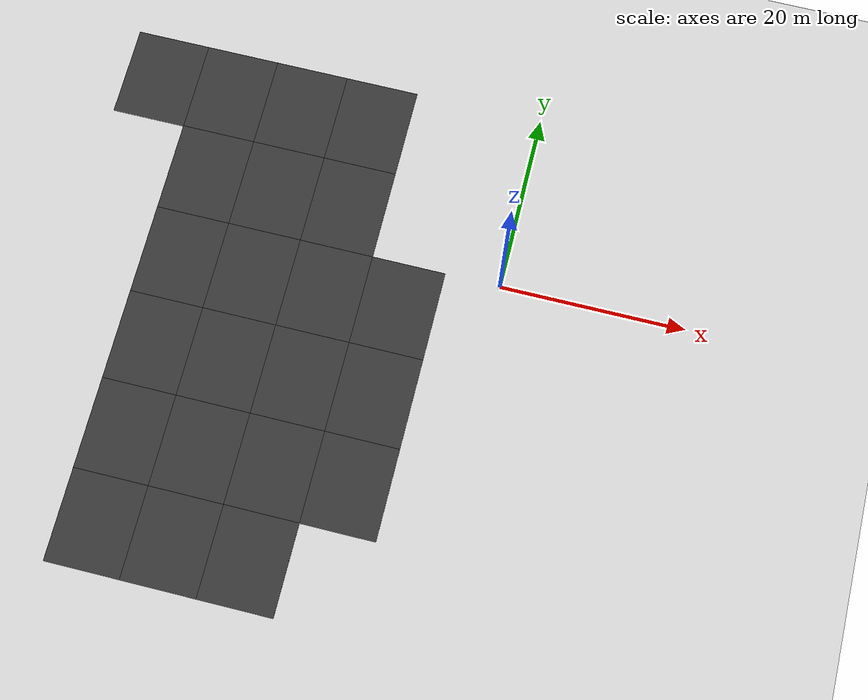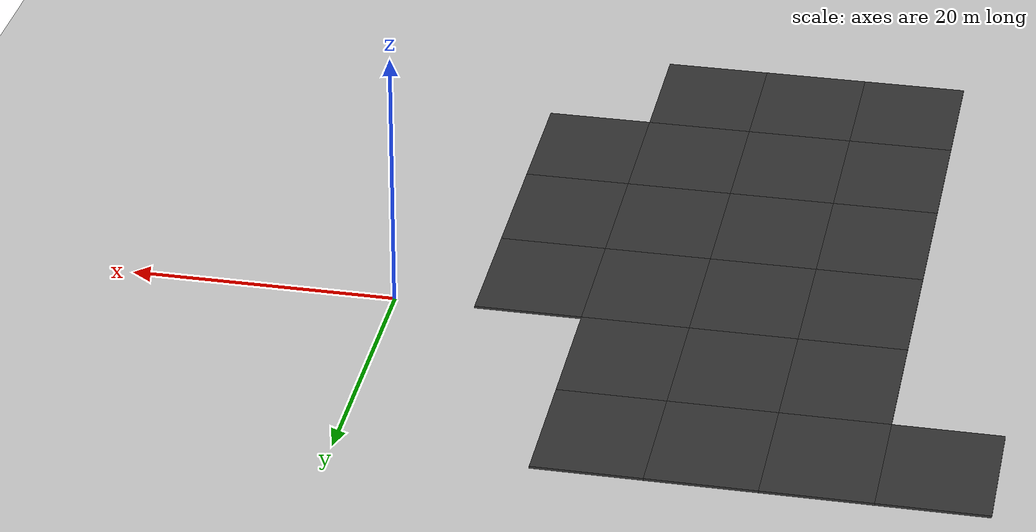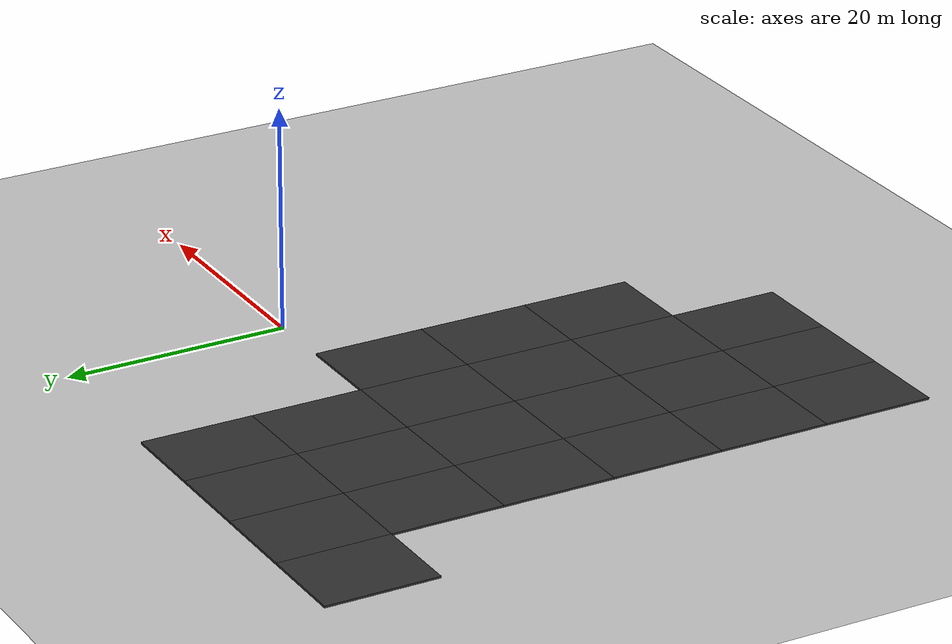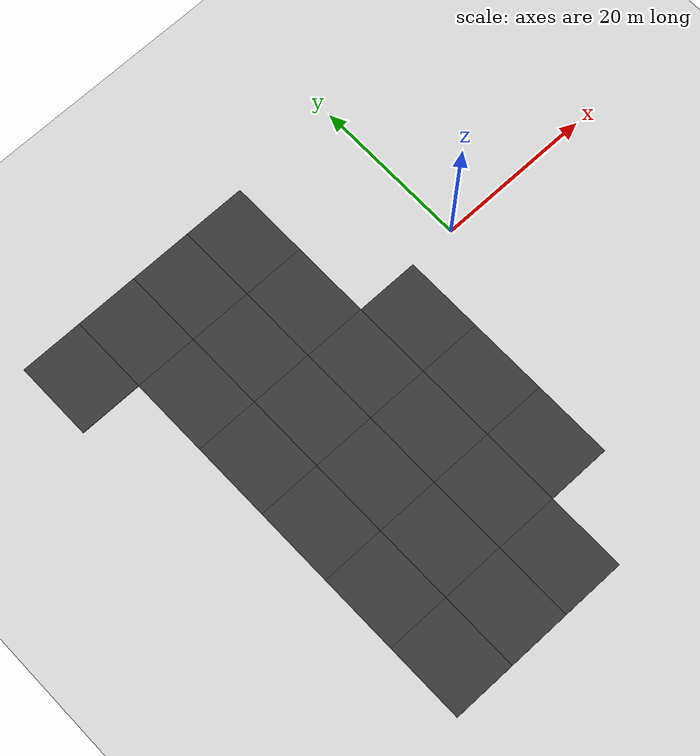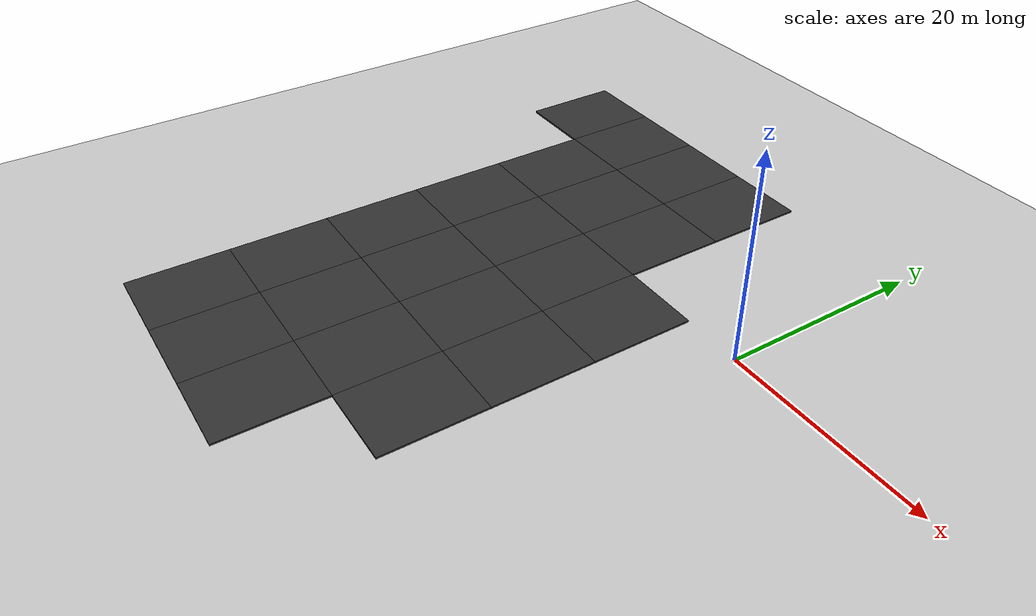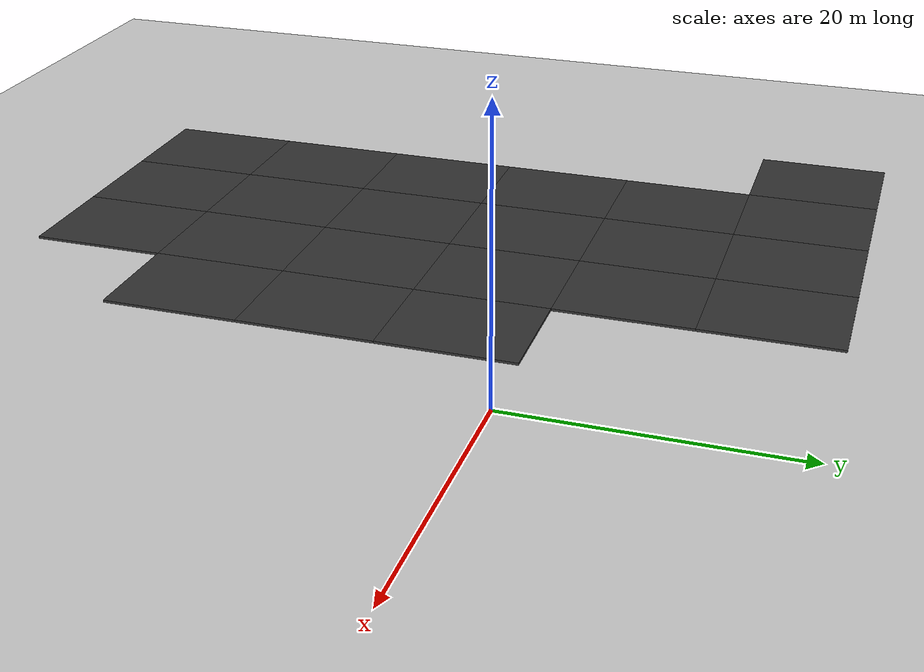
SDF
<sdf version="1.7">
 <world name="default">
  <model name="ground_plane">
   <static>1</static>
   <link name="link">
    <collision name="collision">
     <geometry><plane><normal>0 0 1</normal><size>100 100</size></plane></geometry>
     <surface>
      <contact><collide_bitmask>65535</collide_bitmask></contact>
      <friction><ode><mu>100</mu><mu2>50</mu2></ode></friction>
     </surface>
    </collision>
    <visual name="visual">
     <cast_shadows>0</cast_shadows>
     <geometry><plane><normal>0 0 1</normal><size>100 100</size></plane></geometry>
     <material>
      <script><uri>file://media/materials/scripts/gazebo.material</uri><name>Gazebo/Grey</name></script>
     </material>
    </visual>
   </link>
  </model>
  <model name="mud_box_34">
   <link name="link">
    <inertial>
     <mass>1</mass>
     <inertia><ixx>1</ixx><ixy>0</ixy><ixz>0</ixz><iyy>1</iyy><iyz>0</iyz><izz>1</izz></inertia>
    </inertial>
    <visual name="visual">
     <cast_shadows>0</cast_shadows>
     <geometry><box><size>8 10 0.2</size></box></geometry>
     <material>
      <script>
       <uri>model://mud_box/materials/scripts</uri>
       <uri>model://mud_box/materials/textures</uri>
       <name>vrc/mud</name>
      </script>
      <shader type="pixel"><normal_map>__default__</normal_map></shader>
      <ambient>0.2 0.2 0.2 1</ambient>
      <diffuse>0.2 0.2 0.2 1</diffuse>
      <specular>0.2 0.2 0.2 1</specular>
      <emissive>0 0 0 1</emissive>
     </material>
    </visual>
    <collision name="collision">
     <geometry><box><size>8 10 0.2</size></box></geometry>
     <surface>
      <friction>
       <ode><mu>1</mu><mu2>1</mu2><fdir1>0 0 0</fdir1><slip1>0</slip1><slip2>0</slip2></ode>
       <torsional>
        <coefficient>1</coefficient>
        <patch_radius>0</patch_radius>
        <surface_radius>0</surface_radius>
        <use_patch_radius>1</use_patch_radius>
        <ode><slip>0</slip></ode>
       </torsional>
      </friction>
      <bounce><restitution_coefficient>0</restitution_coefficient><threshold>1e+06</threshold></bounce>
      <contact>
       <collide_without_contact>0</collide_without_contact>
       <collide_without_contact_bitmask>1</collide_without_contact_bitmask>
       <collide_bitmask>1</collide_bitmask>
       <ode>
        <soft_cfm>0</soft_cfm>
        <soft_erp>0.2</soft_erp>
        <kp>1e+13</kp>
        <kd>1</kd>
        <max_vel>0.01</max_vel>
        <min_depth>0</min_depth>
       </ode>
       <bullet>
        <split_impulse>1</split_impulse>
        <split_impulse_penetration_threshold>-0.01</split_impulse_penetration_threshold>
        <soft_cfm>0</soft_cfm>
        <soft_erp>0.2</soft_erp>
        <kp>1e+13</kp>
        <kd>1</kd>
       </bullet>
      </contact>
     </surface>
    </collision>
   </link>
   <static>1</static>
   <pose>-10 -5 0 0 -0 0</pose>
  </model>
  <model name="mud_box_35">
   <link name="link">
    <inertial>
     <mass>1</mass>
     <inertia><ixx>1</ixx><ixy>0</ixy><ixz>0</ixz><iyy>1</iyy><iyz>0</iyz><izz>1</izz></inertia>
    </inertial>
    <visual name="visual">
     <cast_shadows>0</cast_shadows>
     <geometry><box><size>8 10 0.2</size></box></geometry>
     <material>
      <script>
       <uri>model://mud_box/materials/scripts</uri>
       <uri>model://mud_box/materials/textures</uri>
       <name>vrc/mud</name>
      </script>
      <shader type="pixel"><normal_map>__default__</normal_map></shader>
      <ambient>0.2 0.2 0.2 1</ambient>
      <diffuse>0.2 0.2 0.2 1</diffuse>
      <specular>0.2 0.2 0.2 1</specular>
      <emissive>0 0 0 1</emissive>
     </material>
    </visual>
    <collision name="collision">
     <geometry><box><size>8 10 0.2</size></box></geometry>
     <surface>
      <friction>
       <ode><mu>1</mu><mu2>1</mu2><fdir1>0 0 0</fdir1><slip1>0</slip1><slip2>0</slip2></ode>
       <torsional>
        <coefficient>1</coefficient>
        <patch_radius>0</patch_radius>
        <surface_radius>0</surface_radius>
        <use_patch_radius>1</use_patch_radius>
        <ode><slip>0</slip></ode>
       </torsional>
      </friction>
      <bounce><restitution_coefficient>0</restitution_coefficient><threshold>1e+06</threshold></bounce>
      <contact>
       <collide_without_contact>0</collide_without_contact>
       <collide_without_contact_bitmask>1</collide_without_contact_bitmask>
       <collide_bitmask>1</collide_bitmask>
       <ode>
        <soft_cfm>0</soft_cfm>
        <soft_erp>0.2</soft_erp>
        <kp>1e+13</kp>
        <kd>1</kd>
        <max_vel>0.01</max_vel>
        <min_depth>0</min_depth>
       </ode>
       <bullet>
        <split_impulse>1</split_impulse>
        <split_impulse_penetration_threshold>-0.01</split_impulse_penetration_threshold>
        <soft_cfm>0</soft_cfm>
        <soft_erp>0.2</soft_erp>
        <kp>1e+13</kp>
        <kd>1</kd>
       </bullet>
      </contact>
     </surface>
    </collision>
   </link>
   <static>1</static>
   <pose>-10 -15 0 0 -0 0</pose>
  </model>
  <model name="mud_box_36">
   <link name="link">
    <inertial>
     <mass>1</mass>
     <inertia><ixx>1</ixx><ixy>0</ixy><ixz>0</ixz><iyy>1</iyy><iyz>0</iyz><izz>1</izz></inertia>
    </inertial>
    <visual name="visual">
     <cast_shadows>0</cast_shadows>
     <geometry><box><size>8 10 0.2</size></box></geometry>
     <material>
      <script>
       <uri>model://mud_box/materials/scripts</uri>
       <uri>model://mud_box/materials/textures</uri>
       <name>vrc/mud</name>
      </script>
      <shader type="pixel"><normal_map>__default__</normal_map></shader>
      <ambient>0.2 0.2 0.2 1</ambient>
      <diffuse>0.2 0.2 0.2 1</diffuse>
      <specular>0.2 0.2 0.2 1</specular>
      <emissive>0 0 0 1</emissive>
     </material>
    </visual>
    <collision name="collision">
     <geometry><box><size>8 10 0.2</size></box></geometry>
     <surface>
      <friction>
       <ode><mu>1</mu><mu2>1</mu2><fdir1>0 0 0</fdir1><slip1>0</slip1><slip2>0</slip2></ode>
       <torsional>
        <coefficient>1</coefficient>
        <patch_radius>0</patch_radius>
        <surface_radius>0</surface_radius>
        <use_patch_radius>1</use_patch_radius>
        <ode><slip>0</slip></ode>
       </torsional>
      </friction>
      <bounce><restitution_coefficient>0</restitution_coefficient><threshold>1e+06</threshold></bounce>
      <contact>
       <collide_without_contact>0</collide_without_contact>
       <collide_without_contact_bitmask>1</collide_without_contact_bitmask>
       <collide_bitmask>1</collide_bitmask>
       <ode>
        <soft_cfm>0</soft_cfm>
        <soft_erp>0.2</soft_erp>
        <kp>1e+13</kp>
        <kd>1</kd>
        <max_vel>0.01</max_vel>
        <min_depth>0</min_depth>
       </ode>
       <bullet>
        <split_impulse>1</split_impulse>
        <split_impulse_penetration_threshold>-0.01</split_impulse_penetration_threshold>
        <soft_cfm>0</soft_cfm>
        <soft_erp>0.2</soft_erp>
        <kp>1e+13</kp>
        <kd>1</kd>
       </bullet>
      </contact>
     </surface>
    </collision>
   </link>
   <static>1</static>
   <pose>-10 -25 0 0 -0 0</pose>
  </model>
  <model name="mud_box_40">
   <link name="link">
    <inertial>
     <mass>1</mass>
     <inertia><ixx>1</ixx><ixy>0</ixy><ixz>0</ixz><iyy>1</iyy><iyz>0</iyz><izz>1</izz></inertia>
    </inertial>
    <visual name="visual">
     <cast_shadows>0</cast_shadows>
     <geometry><box><size>8 10 0.2</size></box></geometry>
     <material>
      <script>
       <uri>model://mud_box/materials/scripts</uri>
       <uri>model://mud_box/materials/textures</uri>
       <name>vrc/mud</name>
      </script>
      <shader type="pixel"><normal_map>__default__</normal_map></shader>
      <ambient>0.2 0.2 0.2 1</ambient>
      <diffuse>0.2 0.2 0.2 1</diffuse>
      <specular>0.2 0.2 0.2 1</specular>
      <emissive>0 0 0 1</emissive>
     </material>
    </visual>
    <collision name="collision">
     <geometry><box><size>8 10 0.2</size></box></geometry>
     <surface>
      <friction>
       <ode><mu>1</mu><mu2>1</mu2><fdir1>0 0 0</fdir1><slip1>0</slip1><slip2>0</slip2></ode>
       <torsional>
        <coefficient>1</coefficient>
        <patch_radius>0</patch_radius>
        <surface_radius>0</surface_radius>
        <use_patch_radius>1</use_patch_radius>
        <ode><slip>0</slip></ode>
       </torsional>
      </friction>
      <bounce><restitution_coefficient>0</restitution_coefficient><threshold>1e+06</threshold></bounce>
      <contact>
       <collide_without_contact>0</collide_without_contact>
       <collide_without_contact_bitmask>1</collide_without_contact_bitmask>
       <collide_bitmask>1</collide_bitmask>
       <ode>
        <soft_cfm>0</soft_cfm>
        <soft_erp>0.2</soft_erp>
        <kp>1e+13</kp>
        <kd>1</kd>
        <max_vel>0.01</max_vel>
        <min_depth>0</min_depth>
       </ode>
       <bullet>
        <split_impulse>1</split_impulse>
        <split_impulse_penetration_threshold>-0.01</split_impulse_penetration_threshold>
        <soft_cfm>0</soft_cfm>
        <soft_erp>0.2</soft_erp>
        <kp>1e+13</kp>
        <kd>1</kd>
       </bullet>
      </contact>
     </surface>
    </collision>
   </link>
   <static>1</static>
   <pose>-18 -35 0 0 -0 0</pose>
  </model>
  <model name="mud_box_41">
   <link name="link">
    <inertial>
     <mass>1</mass>
     <inertia><ixx>1</ixx><ixy>0</ixy><ixz>0</ixz><iyy>1</iyy><iyz>0</iyz><izz>1</izz></inertia>
    </inertial>
    <visual name="visual">
     <cast_shadows>0</cast_shadows>
     <geometry><box><size>8 10 0.2</size></box></geometry>
     <material>
      <script>
       <uri>model://mud_box/materials/scripts</uri>
       <uri>model://mud_box/materials/textures</uri>
       <name>vrc/mud</name>
      </script>
      <shader type="pixel"><normal_map>__default__</normal_map></shader>
      <ambient>0.2 0.2 0.2 1</ambient>
      <diffuse>0.2 0.2 0.2 1</diffuse>
      <specular>0.2 0.2 0.2 1</specular>
      <emissive>0 0 0 1</emissive>
     </material>
    </visual>
    <collision name="collision">
     <geometry><box><size>8 10 0.2</size></box></geometry>
     <surface>
      <friction>
       <ode><mu>1</mu><mu2>1</mu2><fdir1>0 0 0</fdir1><slip1>0</slip1><slip2>0</slip2></ode>
       <torsional>
        <coefficient>1</coefficient>
        <patch_radius>0</patch_radius>
        <surface_radius>0</surface_radius>
        <use_patch_radius>1</use_patch_radius>
        <ode><slip>0</slip></ode>
       </torsional>
      </friction>
      <bounce><restitution_coefficient>0</restitution_coefficient><threshold>1e+06</threshold></bounce>
      <contact>
       <collide_without_contact>0</collide_without_contact>
       <collide_without_contact_bitmask>1</collide_without_contact_bitmask>
       <collide_bitmask>1</collide_bitmask>
       <ode>
        <soft_cfm>0</soft_cfm>
        <soft_erp>0.2</soft_erp>
        <kp>1e+13</kp>
        <kd>1</kd>
        <max_vel>0.01</max_vel>
        <min_depth>0</min_depth>
       </ode>
       <bullet>
        <split_impulse>1</split_impulse>
        <split_impulse_penetration_threshold>-0.01</split_impulse_penetration_threshold>
        <soft_cfm>0</soft_cfm>
        <soft_erp>0.2</soft_erp>
        <kp>1e+13</kp>
        <kd>1</kd>
       </bullet>
      </contact>
     </surface>
    </collision>
   </link>
   <static>1</static>
   <pose>-18 -25 0 0 -0 0</pose>
  </model>
  <model name="mud_box_42">
   <link name="link">
    <inertial>
     <mass>1</mass>
     <inertia><ixx>1</ixx><ixy>0</ixy><ixz>0</ixz><iyy>1</iyy><iyz>0</iyz><izz>1</izz></inertia>
    </inertial>
    <visual name="visual">
     <cast_shadows>0</cast_shadows>
     <geometry><box><size>8 10 0.2</size></box></geometry>
     <material>
      <script>
       <uri>model://mud_box/materials/scripts</uri>
       <uri>model://mud_box/materials/textures</uri>
       <name>vrc/mud</name>
      </script>
      <shader type="pixel"><normal_map>__default__</normal_map></shader>
      <ambient>0.2 0.2 0.2 1</ambient>
      <diffuse>0.2 0.2 0.2 1</diffuse>
      <specular>0.2 0.2 0.2 1</specular>
      <emissive>0 0 0 1</emissive>
     </material>
    </visual>
    <collision name="collision">
     <geometry><box><size>8 10 0.2</size></box></geometry>
     <surface>
      <friction>
       <ode><mu>1</mu><mu2>1</mu2><fdir1>0 0 0</fdir1><slip1>0</slip1><slip2>0</slip2></ode>
       <torsional>
        <coefficient>1</coefficient>
        <patch_radius>0</patch_radius>
        <surface_radius>0</surface_radius>
        <use_patch_radius>1</use_patch_radius>
        <ode><slip>0</slip></ode>
       </torsional>
      </friction>
      <bounce><restitution_coefficient>0</restitution_coefficient><threshold>1e+06</threshold></bounce>
      <contact>
       <collide_without_contact>0</collide_without_contact>
       <collide_without_contact_bitmask>1</collide_without_contact_bitmask>
       <collide_bitmask>1</collide_bitmask>
       <ode>
        <soft_cfm>0</soft_cfm>
        <soft_erp>0.2</soft_erp>
        <kp>1e+13</kp>
        <kd>1</kd>
        <max_vel>0.01</max_vel>
        <min_depth>0</min_depth>
       </ode>
       <bullet>
        <split_impulse>1</split_impulse>
        <split_impulse_penetration_threshold>-0.01</split_impulse_penetration_threshold>
        <soft_cfm>0</soft_cfm>
        <soft_erp>0.2</soft_erp>
        <kp>1e+13</kp>
        <kd>1</kd>
       </bullet>
      </contact>
     </surface>
    </collision>
   </link>
   <static>1</static>
   <pose>-18 -15 0 0 -0 0</pose>
  </model>
  <model name="mud_box_43">
   <link name="link">
    <inertial>
     <mass>1</mass>
     <inertia><ixx>1</ixx><ixy>0</ixy><ixz>0</ixz><iyy>1</iyy><iyz>0</iyz><izz>1</izz></inertia>
    </inertial>
    <visual name="visual">
     <cast_shadows>0</cast_shadows>
     <geometry><box><size>8 10 0.2</size></box></geometry>
     <material>
      <script>
       <uri>model://mud_box/materials/scripts</uri>
       <uri>model://mud_box/materials/textures</uri>
       <name>vrc/mud</name>
      </script>
      <shader type="pixel"><normal_map>__default__</normal_map></shader>
      <ambient>0.2 0.2 0.2 1</ambient>
      <diffuse>0.2 0.2 0.2 1</diffuse>
      <specular>0.2 0.2 0.2 1</specular>
      <emissive>0 0 0 1</emissive>
     </material>
    </visual>
    <collision name="collision">
     <geometry><box><size>8 10 0.2</size></box></geometry>
     <surface>
      <friction>
       <ode><mu>1</mu><mu2>1</mu2><fdir1>0 0 0</fdir1><slip1>0</slip1><slip2>0</slip2></ode>
       <torsional>
        <coefficient>1</coefficient>
        <patch_radius>0</patch_radius>
        <surface_radius>0</surface_radius>
        <use_patch_radius>1</use_patch_radius>
        <ode><slip>0</slip></ode>
       </torsional>
      </friction>
      <bounce><restitution_coefficient>0</restitution_coefficient><threshold>1e+06</threshold></bounce>
      <contact>
       <collide_without_contact>0</collide_without_contact>
       <collide_without_contact_bitmask>1</collide_without_contact_bitmask>
       <collide_bitmask>1</collide_bitmask>
       <ode>
        <soft_cfm>0</soft_cfm>
        <soft_erp>0.2</soft_erp>
        <kp>1e+13</kp>
        <kd>1</kd>
        <max_vel>0.01</max_vel>
        <min_depth>0</min_depth>
       </ode>
       <bullet>
        <split_impulse>1</split_impulse>
        <split_impulse_penetration_threshold>-0.01</split_impulse_penetration_threshold>
        <soft_cfm>0</soft_cfm>
        <soft_erp>0.2</soft_erp>
        <kp>1e+13</kp>
        <kd>1</kd>
       </bullet>
      </contact>
     </surface>
    </collision>
   </link>
   <static>1</static>
   <pose>-18 -5 0 0 -0 0</pose>
  </model>
  <model name="mud_box_44">
   <link name="link">
    <inertial>
     <mass>1</mass>
     <inertia><ixx>1</ixx><ixy>0</ixy><ixz>0</ixz><iyy>1</iyy><iyz>0</iyz><izz>1</izz></inertia>
    </inertial>
    <visual name="visual">
     <cast_shadows>0</cast_shadows>
     <geometry><box><size>8 10 0.2</size></box></geometry>
     <material>
      <script>
       <uri>model://mud_box/materials/scripts</uri>
       <uri>model://mud_box/materials/textures</uri>
       <name>vrc/mud</name>
      </script>
      <shader type="pixel"><normal_map>__default__</normal_map></shader>
      <ambient>0.2 0.2 0.2 1</ambient>
      <diffuse>0.2 0.2 0.2 1</diffuse>
      <specular>0.2 0.2 0.2 1</specular>
      <emissive>0 0 0 1</emissive>
     </material>
    </visual>
    <collision name="collision">
     <geometry><box><size>8 10 0.2</size></box></geometry>
     <surface>
      <friction>
       <ode><mu>1</mu><mu2>1</mu2><fdir1>0 0 0</fdir1><slip1>0</slip1><slip2>0</slip2></ode>
       <torsional>
        <coefficient>1</coefficient>
        <patch_radius>0</patch_radius>
        <surface_radius>0</surface_radius>
        <use_patch_radius>1</use_patch_radius>
        <ode><slip>0</slip></ode>
       </torsional>
      </friction>
      <bounce><restitution_coefficient>0</restitution_coefficient><threshold>1e+06</threshold></bounce>
      <contact>
       <collide_without_contact>0</collide_without_contact>
       <collide_without_contact_bitmask>1</collide_without_contact_bitmask>
       <collide_bitmask>1</collide_bitmask>
       <ode>
        <soft_cfm>0</soft_cfm>
        <soft_erp>0.2</soft_erp>
        <kp>1e+13</kp>
        <kd>1</kd>
        <max_vel>0.01</max_vel>
        <min_depth>0</min_depth>
       </ode>
       <bullet>
        <split_impulse>1</split_impulse>
        <split_impulse_penetration_threshold>-0.01</split_impulse_penetration_threshold>
        <soft_cfm>0</soft_cfm>
        <soft_erp>0.2</soft_erp>
        <kp>1e+13</kp>
        <kd>1</kd>
       </bullet>
      </contact>
     </surface>
    </collision>
   </link>
   <static>1</static>
   <pose>-26 -5 0 0 -0 0</pose>
  </model>
  <model name="mud_box_45">
   <link name="link">
    <inertial>
     <mass>1</mass>
     <inertia><ixx>1</ixx><ixy>0</ixy><ixz>0</ixz><iyy>1</iyy><iyz>0</iyz><izz>1</izz></inertia>
    </inertial>
    <visual name="visual">
     <cast_shadows>0</cast_shadows>
     <geometry><box><size>8 10 0.2</size></box></geometry>
     <material>
      <script>
       <uri>model://mud_box/materials/scripts</uri>
       <uri>model://mud_box/materials/textures</uri>
       <name>vrc/mud</name>
      </script>
      <shader type="pixel"><normal_map>__default__</normal_map></shader>
      <ambient>0.2 0.2 0.2 1</ambient>
      <diffuse>0.2 0.2 0.2 1</diffuse>
      <specular>0.2 0.2 0.2 1</specular>
      <emissive>0 0 0 1</emissive>
     </material>
    </visual>
    <collision name="collision">
     <geometry><box><size>8 10 0.2</size></box></geometry>
     <surface>
      <friction>
       <ode><mu>1</mu><mu2>1</mu2><fdir1>0 0 0</fdir1><slip1>0</slip1><slip2>0</slip2></ode>
       <torsional>
        <coefficient>1</coefficient>
        <patch_radius>0</patch_radius>
        <surface_radius>0</surface_radius>
        <use_patch_radius>1</use_patch_radius>
        <ode><slip>0</slip></ode>
       </torsional>
      </friction>
      <bounce><restitution_coefficient>0</restitution_coefficient><threshold>1e+06</threshold></bounce>
      <contact>
       <collide_without_contact>0</collide_without_contact>
       <collide_without_contact_bitmask>1</collide_without_contact_bitmask>
       <collide_bitmask>1</collide_bitmask>
       <ode>
        <soft_cfm>0</soft_cfm>
        <soft_erp>0.2</soft_erp>
        <kp>1e+13</kp>
        <kd>1</kd>
        <max_vel>0.01</max_vel>
        <min_depth>0</min_depth>
       </ode>
       <bullet>
        <split_impulse>1</split_impulse>
        <split_impulse_penetration_threshold>-0.01</split_impulse_penetration_threshold>
        <soft_cfm>0</soft_cfm>
        <soft_erp>0.2</soft_erp>
        <kp>1e+13</kp>
        <kd>1</kd>
       </bullet>
      </contact>
     </surface>
    </collision>
   </link>
   <static>1</static>
   <pose>-26 -15 0 0 -0 0</pose>
  </model>
  <model name="mud_box_46">
   <link name="link">
    <inertial>
     <mass>1</mass>
     <inertia><ixx>1</ixx><ixy>0</ixy><ixz>0</ixz><iyy>1</iyy><iyz>0</iyz><izz>1</izz></inertia>
    </inertial>
    <visual name="visual">
     <cast_shadows>0</cast_shadows>
     <geometry><box><size>8 10 0.2</size></box></geometry>
     <material>
      <script>
       <uri>model://mud_box/materials/scripts</uri>
       <uri>model://mud_box/materials/textures</uri>
       <name>vrc/mud</name>
      </script>
      <shader type="pixel"><normal_map>__default__</normal_map></shader>
      <ambient>0.2 0.2 0.2 1</ambient>
      <diffuse>0.2 0.2 0.2 1</diffuse>
      <specular>0.2 0.2 0.2 1</specular>
      <emissive>0 0 0 1</emissive>
     </material>
    </visual>
    <collision name="collision">
     <geometry><box><size>8 10 0.2</size></box></geometry>
     <surface>
      <friction>
       <ode><mu>1</mu><mu2>1</mu2><fdir1>0 0 0</fdir1><slip1>0</slip1><slip2>0</slip2></ode>
       <torsional>
        <coefficient>1</coefficient>
        <patch_radius>0</patch_radius>
        <surface_radius>0</surface_radius>
        <use_patch_radius>1</use_patch_radius>
        <ode><slip>0</slip></ode>
       </torsional>
      </friction>
      <bounce><restitution_coefficient>0</restitution_coefficient><threshold>1e+06</threshold></bounce>
      <contact>
       <collide_without_contact>0</collide_without_contact>
       <collide_without_contact_bitmask>1</collide_without_contact_bitmask>
       <collide_bitmask>1</collide_bitmask>
       <ode>
        <soft_cfm>0</soft_cfm>
        <soft_erp>0.2</soft_erp>
        <kp>1e+13</kp>
        <kd>1</kd>
        <max_vel>0.01</max_vel>
        <min_depth>0</min_depth>
       </ode>
       <bullet>
        <split_impulse>1</split_impulse>
        <split_impulse_penetration_threshold>-0.01</split_impulse_penetration_threshold>
        <soft_cfm>0</soft_cfm>
        <soft_erp>0.2</soft_erp>
        <kp>1e+13</kp>
        <kd>1</kd>
       </bullet>
      </contact>
     </surface>
    </collision>
   </link>
   <static>1</static>
   <pose>-26 -25 0 0 -0 0</pose>
  </model>
  <model name="mud_box_47">
   <link name="link">
    <inertial>
     <mass>1</mass>
     <inertia><ixx>1</ixx><ixy>0</ixy><ixz>0</ixz><iyy>1</iyy><iyz>0</iyz><izz>1</izz></inertia>
    </inertial>
    <visual name="visual">
     <cast_shadows>0</cast_shadows>
     <geometry><box><size>8 10 0.2</size></box></geometry>
     <material>
      <script>
       <uri>model://mud_box/materials/scripts</uri>
       <uri>model://mud_box/materials/textures</uri>
       <name>vrc/mud</name>
      </script>
      <shader type="pixel"><normal_map>__default__</normal_map></shader>
      <ambient>0.2 0.2 0.2 1</ambient>
      <diffuse>0.2 0.2 0.2 1</diffuse>
      <specular>0.2 0.2 0.2 1</specular>
      <emissive>0 0 0 1</emissive>
     </material>
    </visual>
    <collision name="collision">
     <geometry><box><size>8 10 0.2</size></box></geometry>
     <surface>
      <friction>
       <ode><mu>1</mu><mu2>1</mu2><fdir1>0 0 0</fdir1><slip1>0</slip1><slip2>0</slip2></ode>
       <torsional>
        <coefficient>1</coefficient>
        <patch_radius>0</patch_radius>
        <surface_radius>0</surface_radius>
        <use_patch_radius>1</use_patch_radius>
        <ode><slip>0</slip></ode>
       </torsional>
      </friction>
      <bounce><restitution_coefficient>0</restitution_coefficient><threshold>1e+06</threshold></bounce>
      <contact>
       <collide_without_contact>0</collide_without_contact>
       <collide_without_contact_bitmask>1</collide_without_contact_bitmask>
       <collide_bitmask>1</collide_bitmask>
       <ode>
        <soft_cfm>0</soft_cfm>
        <soft_erp>0.2</soft_erp>
        <kp>1e+13</kp>
        <kd>1</kd>
        <max_vel>0.01</max_vel>
        <min_depth>0</min_depth>
       </ode>
       <bullet>
        <split_impulse>1</split_impulse>
        <split_impulse_penetration_threshold>-0.01</split_impulse_penetration_threshold>
        <soft_cfm>0</soft_cfm>
        <soft_erp>0.2</soft_erp>
        <kp>1e+13</kp>
        <kd>1</kd>
       </bullet>
      </contact>
     </surface>
    </collision>
   </link>
   <static>1</static>
   <pose>-26 -35 0 0 -0 0</pose>
  </model>
  <model name="mud_box_50">
   <link name="link">
    <inertial>
     <mass>1</mass>
     <inertia><ixx>1</ixx><ixy>0</ixy><ixz>0</ixz><iyy>1</iyy><iyz>0</iyz><izz>1</izz></inertia>
    </inertial>
    <visual name="visual">
     <cast_shadows>0</cast_shadows>
     <geometry><box><size>8 10 0.2</size></box></geometry>
     <material>
      <script>
       <uri>model://mud_box/materials/scripts</uri>
       <uri>model://mud_box/materials/textures</uri>
       <name>vrc/mud</name>
      </script>
      <shader type="pixel"><normal_map>__default__</normal_map></shader>
      <ambient>0.2 0.2 0.2 1</ambient>
      <diffuse>0.2 0.2 0.2 1</diffuse>
      <specular>0.2 0.2 0.2 1</specular>
      <emissive>0 0 0 1</emissive>
     </material>
    </visual>
    <collision name="collision">
     <geometry><box><size>8 10 0.2</size></box></geometry>
     <surface>
      <friction>
       <ode><mu>1</mu><mu2>1</mu2><fdir1>0 0 0</fdir1><slip1>0</slip1><slip2>0</slip2></ode>
       <torsional>
        <coefficient>1</coefficient>
        <patch_radius>0</patch_radius>
        <surface_radius>0</surface_radius>
        <use_patch_radius>1</use_patch_radius>
        <ode><slip>0</slip></ode>
       </torsional>
      </friction>
      <bounce><restitution_coefficient>0</restitution_coefficient><threshold>1e+06</threshold></bounce>
      <contact>
       <collide_without_contact>0</collide_without_contact>
       <collide_without_contact_bitmask>1</collide_without_contact_bitmask>
       <collide_bitmask>1</collide_bitmask>
       <ode>
        <soft_cfm>0</soft_cfm>
        <soft_erp>0.2</soft_erp>
        <kp>1e+13</kp>
        <kd>1</kd>
        <max_vel>0.01</max_vel>
        <min_depth>0</min_depth>
       </ode>
       <bullet>
        <split_impulse>1</split_impulse>
        <split_impulse_penetration_threshold>-0.01</split_impulse_penetration_threshold>
        <soft_cfm>0</soft_cfm>
        <soft_erp>0.2</soft_erp>
        <kp>1e+13</kp>
        <kd>1</kd>
       </bullet>
      </contact>
     </surface>
    </collision>
   </link>
   <static>1</static>
   <pose>-34 -35 0 0 -0 0</pose>
  </model>
  <model name="mud_box_51">
   <link name="link">
    <inertial>
     <mass>1</mass>
     <inertia><ixx>1</ixx><ixy>0</ixy><ixz>0</ixz><iyy>1</iyy><iyz>0</iyz><izz>1</izz></inertia>
    </inertial>
    <visual name="visual">
     <cast_shadows>0</cast_shadows>
     <geometry><box><size>8 10 0.2</size></box></geometry>
     <material>
      <script>
       <uri>model://mud_box/materials/scripts</uri>
       <uri>model://mud_box/materials/textures</uri>
       <name>vrc/mud</name>
      </script>
      <shader type="pixel"><normal_map>__default__</normal_map></shader>
      <ambient>0.2 0.2 0.2 1</ambient>
      <diffuse>0.2 0.2 0.2 1</diffuse>
      <specular>0.2 0.2 0.2 1</specular>
      <emissive>0 0 0 1</emissive>
     </material>
    </visual>
    <collision name="collision">
     <geometry><box><size>8 10 0.2</size></box></geometry>
     <surface>
      <friction>
       <ode><mu>1</mu><mu2>1</mu2><fdir1>0 0 0</fdir1><slip1>0</slip1><slip2>0</slip2></ode>
       <torsional>
        <coefficient>1</coefficient>
        <patch_radius>0</patch_radius>
        <surface_radius>0</surface_radius>
        <use_patch_radius>1</use_patch_radius>
        <ode><slip>0</slip></ode>
       </torsional>
      </friction>
      <bounce><restitution_coefficient>0</restitution_coefficient><threshold>1e+06</threshold></bounce>
      <contact>
       <collide_without_contact>0</collide_without_contact>
       <collide_without_contact_bitmask>1</collide_without_contact_bitmask>
       <collide_bitmask>1</collide_bitmask>
       <ode>
        <soft_cfm>0</soft_cfm>
        <soft_erp>0.2</soft_erp>
        <kp>1e+13</kp>
        <kd>1</kd>
        <max_vel>0.01</max_vel>
        <min_depth>0</min_depth>
       </ode>
       <bullet>
        <split_impulse>1</split_impulse>
        <split_impulse_penetration_threshold>-0.01</split_impulse_penetration_threshold>
        <soft_cfm>0</soft_cfm>
        <soft_erp>0.2</soft_erp>
        <kp>1e+13</kp>
        <kd>1</kd>
       </bullet>
      </contact>
     </surface>
    </collision>
   </link>
   <static>1</static>
   <pose>-34 -25 0 0 -0 0</pose>
  </model>
  <model name="mud_box_52">
   <link name="link">
    <inertial>
     <mass>1</mass>
     <inertia><ixx>1</ixx><ixy>0</ixy><ixz>0</ixz><iyy>1</iyy><iyz>0</iyz><izz>1</izz></inertia>
    </inertial>
    <visual name="visual">
     <cast_shadows>0</cast_shadows>
     <geometry><box><size>8 10 0.2</size></box></geometry>
     <material>
      <script>
       <uri>model://mud_box/materials/scripts</uri>
       <uri>model://mud_box/materials/textures</uri>
       <name>vrc/mud</name>
      </script>
      <shader type="pixel"><normal_map>__default__</normal_map></shader>
      <ambient>0.2 0.2 0.2 1</ambient>
      <diffuse>0.2 0.2 0.2 1</diffuse>
      <specular>0.2 0.2 0.2 1</specular>
      <emissive>0 0 0 1</emissive>
     </material>
    </visual>
    <collision name="collision">
     <geometry><box><size>8 10 0.2</size></box></geometry>
     <surface>
      <friction>
       <ode><mu>1</mu><mu2>1</mu2><fdir1>0 0 0</fdir1><slip1>0</slip1><slip2>0</slip2></ode>
       <torsional>
        <coefficient>1</coefficient>
        <patch_radius>0</patch_radius>
        <surface_radius>0</surface_radius>
        <use_patch_radius>1</use_patch_radius>
        <ode><slip>0</slip></ode>
       </torsional>
      </friction>
      <bounce><restitution_coefficient>0</restitution_coefficient><threshold>1e+06</threshold></bounce>
      <contact>
       <collide_without_contact>0</collide_without_contact>
       <collide_without_contact_bitmask>1</collide_without_contact_bitmask>
       <collide_bitmask>1</collide_bitmask>
       <ode>
        <soft_cfm>0</soft_cfm>
        <soft_erp>0.2</soft_erp>
        <kp>1e+13</kp>
        <kd>1</kd>
        <max_vel>0.01</max_vel>
        <min_depth>0</min_depth>
       </ode>
       <bullet>
        <split_impulse>1</split_impulse>
        <split_impulse_penetration_threshold>-0.01</split_impulse_penetration_threshold>
        <soft_cfm>0</soft_cfm>
        <soft_erp>0.2</soft_erp>
        <kp>1e+13</kp>
        <kd>1</kd>
       </bullet>
      </contact>
     </surface>
    </collision>
   </link>
   <static>1</static>
   <pose>-34 -15 0 0 -0 0</pose>
  </model>
  <model name="mud_box_53">
   <link name="link">
    <inertial>
     <mass>1</mass>
     <inertia><ixx>1</ixx><ixy>0</ixy><ixz>0</ixz><iyy>1</iyy><iyz>0</iyz><izz>1</izz></inertia>
    </inertial>
    <visual name="visual">
     <cast_shadows>0</cast_shadows>
     <geometry><box><size>8 10 0.2</size></box></geometry>
     <material>
      <script>
       <uri>model://mud_box/materials/scripts</uri>
       <uri>model://mud_box/materials/textures</uri>
       <name>vrc/mud</name>
      </script>
      <shader type="pixel"><normal_map>__default__</normal_map></shader>
      <ambient>0.2 0.2 0.2 1</ambient>
      <diffuse>0.2 0.2 0.2 1</diffuse>
      <specular>0.2 0.2 0.2 1</specular>
      <emissive>0 0 0 1</emissive>
     </material>
    </visual>
    <collision name="collision">
     <geometry><box><size>8 10 0.2</size></box></geometry>
     <surface>
      <friction>
       <ode><mu>1</mu><mu2>1</mu2><fdir1>0 0 0</fdir1><slip1>0</slip1><slip2>0</slip2></ode>
       <torsional>
        <coefficient>1</coefficient>
        <patch_radius>0</patch_radius>
        <surface_radius>0</surface_radius>
        <use_patch_radius>1</use_patch_radius>
        <ode><slip>0</slip></ode>
       </torsional>
      </friction>
      <bounce><restitution_coefficient>0</restitution_coefficient><threshold>1e+06</threshold></bounce>
      <contact>
       <collide_without_contact>0</collide_without_contact>
       <collide_without_contact_bitmask>1</collide_without_contact_bitmask>
       <collide_bitmask>1</collide_bitmask>
       <ode>
        <soft_cfm>0</soft_cfm>
        <soft_erp>0.2</soft_erp>
        <kp>1e+13</kp>
        <kd>1</kd>
        <max_vel>0.01</max_vel>
        <min_depth>0</min_depth>
       </ode>
       <bullet>
        <split_impulse>1</split_impulse>
        <split_impulse_penetration_threshold>-0.01</split_impulse_penetration_threshold>
        <soft_cfm>0</soft_cfm>
        <soft_erp>0.2</soft_erp>
        <kp>1e+13</kp>
        <kd>1</kd>
       </bullet>
      </contact>
     </surface>
    </collision>
   </link>
   <static>1</static>
   <pose>-34 -5 0 0 -0 0</pose>
  </model>
  <model name="mud_box_86">
   <link name="link">
    <inertial>
     <mass>1</mass>
     <inertia><ixx>1</ixx><ixy>0</ixy><ixz>0</ixz><iyy>1</iyy><iyz>0</iyz><izz>1</izz></inertia>
    </inertial>
    <visual name="visual">
     <cast_shadows>0</cast_shadows>
     <geometry><box><size>8 10 0.2</size></box></geometry>
     <material>
      <script>
       <uri>model://mud_box/materials/scripts</uri>
       <uri>model://mud_box/materials/textures</uri>
       <name>vrc/mud</name>
      </script>
      <shader type="pixel"><normal_map>__default__</normal_map></shader>
      <ambient>0.2 0.2 0.2 1</ambient>
      <diffuse>0.2 0.2 0.2 1</diffuse>
      <specular>0.2 0.2 0.2 1</specular>
      <emissive>0 0 0 1</emissive>
     </material>
    </visual>
    <collision name="collision">
     <geometry><box><size>8 10 0.2</size></box></geometry>
     <surface>
      <friction>
       <ode><mu>1</mu><mu2>1</mu2><fdir1>0 0 0</fdir1><slip1>0</slip1><slip2>0</slip2></ode>
       <torsional>
        <coefficient>1</coefficient>
        <patch_radius>0</patch_radius>
        <surface_radius>0</surface_radius>
        <use_patch_radius>1</use_patch_radius>
        <ode><slip>0</slip></ode>
       </torsional>
      </friction>
      <bounce><restitution_coefficient>0</restitution_coefficient><threshold>1e+06</threshold></bounce>
      <contact>
       <collide_without_contact>0</collide_without_contact>
       <collide_without_contact_bitmask>1</collide_without_contact_bitmask>
       <collide_bitmask>1</collide_bitmask>
       <ode>
        <soft_cfm>0</soft_cfm>
        <soft_erp>0.2</soft_erp>
        <kp>1e+13</kp>
        <kd>1</kd>
        <max_vel>0.01</max_vel>
        <min_depth>0</min_depth>
       </ode>
       <bullet>
        <split_impulse>1</split_impulse>
        <split_impulse_penetration_threshold>-0.01</split_impulse_penetration_threshold>
        <soft_cfm>0</soft_cfm>
        <soft_erp>0.2</soft_erp>
        <kp>1e+13</kp>
        <kd>1</kd>
       </bullet>
      </contact>
     </surface>
    </collision>
   </link>
   <static>1</static>
   <pose>-34 5 0 0 -0 0</pose>
  </model>
  <model name="mud_box_87">
   <link name="link">
    <inertial>
     <mass>1</mass>
     <inertia><ixx>1</ixx><ixy>0</ixy><ixz>0</ixz><iyy>1</iyy><iyz>0</iyz><izz>1</izz></inertia>
    </inertial>
    <visual name="visual">
     <cast_shadows>0</cast_shadows>
     <geometry><box><size>8 10 0.2</size></box></geometry>
     <material>
      <script>
       <uri>model://mud_box/materials/scripts</uri>
       <uri>model://mud_box/materials/textures</uri>
       <name>vrc/mud</name>
      </script>
      <shader type="pixel"><normal_map>__default__</normal_map></shader>
      <ambient>0.2 0.2 0.2 1</ambient>
      <diffuse>0.2 0.2 0.2 1</diffuse>
      <specular>0.2 0.2 0.2 1</specular>
      <emissive>0 0 0 1</emissive>
     </material>
    </visual>
    <collision name="collision">
     <geometry><box><size>8 10 0.2</size></box></geometry>
     <surface>
      <friction>
       <ode><mu>1</mu><mu2>1</mu2><fdir1>0 0 0</fdir1><slip1>0</slip1><slip2>0</slip2></ode>
       <torsional>
        <coefficient>1</coefficient>
        <patch_radius>0</patch_radius>
        <surface_radius>0</surface_radius>
        <use_patch_radius>1</use_patch_radius>
        <ode><slip>0</slip></ode>
       </torsional>
      </friction>
      <bounce><restitution_coefficient>0</restitution_coefficient><threshold>1e+06</threshold></bounce>
      <contact>
       <collide_without_contact>0</collide_without_contact>
       <collide_without_contact_bitmask>1</collide_without_contact_bitmask>
       <collide_bitmask>1</collide_bitmask>
       <ode>
        <soft_cfm>0</soft_cfm>
        <soft_erp>0.2</soft_erp>
        <kp>1e+13</kp>
        <kd>1</kd>
        <max_vel>0.01</max_vel>
        <min_depth>0</min_depth>
       </ode>
       <bullet>
        <split_impulse>1</split_impulse>
        <split_impulse_penetration_threshold>-0.01</split_impulse_penetration_threshold>
        <soft_cfm>0</soft_cfm>
        <soft_erp>0.2</soft_erp>
        <kp>1e+13</kp>
        <kd>1</kd>
       </bullet>
      </contact>
     </surface>
    </collision>
   </link>
   <static>1</static>
   <pose>-26 5 0 0 -0 0</pose>
  </model>
  <model name="mud_box_88">
   <link name="link">
    <inertial>
     <mass>1</mass>
     <inertia><ixx>1</ixx><ixy>0</ixy><ixz>0</ixz><iyy>1</iyy><iyz>0</iyz><izz>1</izz></inertia>
    </inertial>
    <visual name="visual">
     <cast_shadows>0</cast_shadows>
     <geometry><box><size>8 10 0.2</size></box></geometry>
     <material>
      <script>
       <uri>model://mud_box/materials/scripts</uri>
       <uri>model://mud_box/materials/textures</uri>
       <name>vrc/mud</name>
      </script>
      <shader type="pixel"><normal_map>__default__</normal_map></shader>
      <ambient>0.2 0.2 0.2 1</ambient>
      <diffuse>0.2 0.2 0.2 1</diffuse>
      <specular>0.2 0.2 0.2 1</specular>
      <emissive>0 0 0 1</emissive>
     </material>
    </visual>
    <collision name="collision">
     <geometry><box><size>8 10 0.2</size></box></geometry>
     <surface>
      <friction>
       <ode><mu>1</mu><mu2>1</mu2><fdir1>0 0 0</fdir1><slip1>0</slip1><slip2>0</slip2></ode>
       <torsional>
        <coefficient>1</coefficient>
        <patch_radius>0</patch_radius>
        <surface_radius>0</surface_radius>
        <use_patch_radius>1</use_patch_radius>
        <ode><slip>0</slip></ode>
       </torsional>
      </friction>
      <bounce><restitution_coefficient>0</restitution_coefficient><threshold>1e+06</threshold></bounce>
      <contact>
       <collide_without_contact>0</collide_without_contact>
       <collide_without_contact_bitmask>1</collide_without_contact_bitmask>
       <collide_bitmask>1</collide_bitmask>
       <ode>
        <soft_cfm>0</soft_cfm>
        <soft_erp>0.2</soft_erp>
        <kp>1e+13</kp>
        <kd>1</kd>
        <max_vel>0.01</max_vel>
        <min_depth>0</min_depth>
       </ode>
       <bullet>
        <split_impulse>1</split_impulse>
        <split_impulse_penetration_threshold>-0.01</split_impulse_penetration_threshold>
        <soft_cfm>0</soft_cfm>
        <soft_erp>0.2</soft_erp>
        <kp>1e+13</kp>
        <kd>1</kd>
       </bullet>
      </contact>
     </surface>
    </collision>
   </link>
   <static>1</static>
   <pose>-18 5 0 0 -0 0</pose>
  </model>
  <model name="mud_box_138">
   <link name="link">
    <inertial>
     <mass>1</mass>
     <inertia><ixx>1</ixx><ixy>0</ixy><ixz>0</ixz><iyy>1</iyy><iyz>0</iyz><izz>1</izz></inertia>
    </inertial>
    <visual name="visual">
     <cast_shadows>0</cast_shadows>
     <geometry><box><size>8 10 0.2</size></box></geometry>
     <material>
      <script>
       <uri>model://mud_box/materials/scripts</uri>
       <uri>model://mud_box/materials/textures</uri>
       <name>vrc/mud</name>
      </script>
      <shader type="pixel"><normal_map>__default__</normal_map></shader>
      <ambient>0.2 0.2 0.2 1</ambient>
      <diffuse>0.2 0.2 0.2 1</diffuse>
      <specular>0.2 0.2 0.2 1</specular>
      <emissive>0 0 0 1</emissive>
     </material>
    </visual>
    <collision name="collision">
     <geometry><box><size>8 10 0.2</size></box></geometry>
     <surface>
      <friction>
       <ode><mu>1</mu><mu2>1</mu2><fdir1>0 0 0</fdir1><slip1>0</slip1><slip2>0</slip2></ode>
       <torsional>
        <coefficient>1</coefficient>
        <patch_radius>0</patch_radius>
        <surface_radius>0</surface_radius>
        <use_patch_radius>1</use_patch_radius>
        <ode><slip>0</slip></ode>
       </torsional>
      </friction>
      <bounce><restitution_coefficient>0</restitution_coefficient><threshold>1e+06</threshold></bounce>
      <contact>
       <collide_without_contact>0</collide_without_contact>
       <collide_without_contact_bitmask>1</collide_without_contact_bitmask>
       <collide_bitmask>1</collide_bitmask>
       <ode>
        <soft_cfm>0</soft_cfm>
        <soft_erp>0.2</soft_erp>
        <kp>1e+13</kp>
        <kd>1</kd>
        <max_vel>0.01</max_vel>
        <min_depth>0</min_depth>
       </ode>
       <bullet>
        <split_impulse>1</split_impulse>
        <split_impulse_penetration_threshold>-0.01</split_impulse_penetration_threshold>
        <soft_cfm>0</soft_cfm>
        <soft_erp>0.2</soft_erp>
        <kp>1e+13</kp>
        <kd>1</kd>
       </bullet>
      </contact>
     </surface>
    </collision>
   </link>
   <static>1</static>
   <pose>-42 15 0 0 -0 0</pose>
  </model>
  <model name="mud_box_139">
   <link name="link">
    <inertial>
     <mass>1</mass>
     <inertia><ixx>1</ixx><ixy>0</ixy><ixz>0</ixz><iyy>1</iyy><iyz>0</iyz><izz>1</izz></inertia>
    </inertial>
    <visual name="visual">
     <cast_shadows>0</cast_shadows>
     <geometry><box><size>8 10 0.2</size></box></geometry>
     <material>
      <script>
       <uri>model://mud_box/materials/scripts</uri>
       <uri>model://mud_box/materials/textures</uri>
       <name>vrc/mud</name>
      </script>
      <shader type="pixel"><normal_map>__default__</normal_map></shader>
      <ambient>0.2 0.2 0.2 1</ambient>
      <diffuse>0.2 0.2 0.2 1</diffuse>
      <specular>0.2 0.2 0.2 1</specular>
      <emissive>0 0 0 1</emissive>
     </material>
    </visual>
    <collision name="collision">
     <geometry><box><size>8 10 0.2</size></box></geometry>
     <surface>
      <friction>
       <ode><mu>1</mu><mu2>1</mu2><fdir1>0 0 0</fdir1><slip1>0</slip1><slip2>0</slip2></ode>
       <torsional>
        <coefficient>1</coefficient>
        <patch_radius>0</patch_radius>
        <surface_radius>0</surface_radius>
        <use_patch_radius>1</use_patch_radius>
        <ode><slip>0</slip></ode>
       </torsional>
      </friction>
      <bounce><restitution_coefficient>0</restitution_coefficient><threshold>1e+06</threshold></bounce>
      <contact>
       <collide_without_contact>0</collide_without_contact>
       <collide_without_contact_bitmask>1</collide_without_contact_bitmask>
       <collide_bitmask>1</collide_bitmask>
       <ode>
        <soft_cfm>0</soft_cfm>
        <soft_erp>0.2</soft_erp>
        <kp>1e+13</kp>
        <kd>1</kd>
        <max_vel>0.01</max_vel>
        <min_depth>0</min_depth>
       </ode>
       <bullet>
        <split_impulse>1</split_impulse>
        <split_impulse_penetration_threshold>-0.01</split_impulse_penetration_threshold>
        <soft_cfm>0</soft_cfm>
        <soft_erp>0.2</soft_erp>
        <kp>1e+13</kp>
        <kd>1</kd>
       </bullet>
      </contact>
     </surface>
    </collision>
   </link>
   <static>1</static>
   <pose>-34 15 0 0 -0 0</pose>
  </model>
  <model name="mud_box_140">
   <link name="link">
    <inertial>
     <mass>1</mass>
     <inertia><ixx>1</ixx><ixy>0</ixy><ixz>0</ixz><iyy>1</iyy><iyz>0</iyz><izz>1</izz></inertia>
    </inertial>
    <visual name="visual">
     <cast_shadows>0</cast_shadows>
     <geometry><box><size>8 10 0.2</size></box></geometry>
     <material>
      <script>
       <uri>model://mud_box/materials/scripts</uri>
       <uri>model://mud_box/materials/textures</uri>
       <name>vrc/mud</name>
      </script>
      <shader type="pixel"><normal_map>__default__</normal_map></shader>
      <ambient>0.2 0.2 0.2 1</ambient>
      <diffuse>0.2 0.2 0.2 1</diffuse>
      <specular>0.2 0.2 0.2 1</specular>
      <emissive>0 0 0 1</emissive>
     </material>
    </visual>
    <collision name="collision">
     <geometry><box><size>8 10 0.2</size></box></geometry>
     <surface>
      <friction>
       <ode><mu>1</mu><mu2>1</mu2><fdir1>0 0 0</fdir1><slip1>0</slip1><slip2>0</slip2></ode>
       <torsional>
        <coefficient>1</coefficient>
        <patch_radius>0</patch_radius>
        <surface_radius>0</surface_radius>
        <use_patch_radius>1</use_patch_radius>
        <ode><slip>0</slip></ode>
       </torsional>
      </friction>
      <bounce><restitution_coefficient>0</restitution_coefficient><threshold>1e+06</threshold></bounce>
      <contact>
       <collide_without_contact>0</collide_without_contact>
       <collide_without_contact_bitmask>1</collide_without_contact_bitmask>
       <collide_bitmask>1</collide_bitmask>
       <ode>
        <soft_cfm>0</soft_cfm>
        <soft_erp>0.2</soft_erp>
        <kp>1e+13</kp>
        <kd>1</kd>
        <max_vel>0.01</max_vel>
        <min_depth>0</min_depth>
       </ode>
       <bullet>
        <split_impulse>1</split_impulse>
        <split_impulse_penetration_threshold>-0.01</split_impulse_penetration_threshold>
        <soft_cfm>0</soft_cfm>
        <soft_erp>0.2</soft_erp>
        <kp>1e+13</kp>
        <kd>1</kd>
       </bullet>
      </contact>
     </surface>
    </collision>
   </link>
   <static>1</static>
   <pose>-26 15 0 0 -0 0</pose>
  </model>
  <model name="mud_box_141">
   <link name="link">
    <inertial>
     <mass>1</mass>
     <inertia><ixx>1</ixx><ixy>0</ixy><ixz>0</ixz><iyy>1</iyy><iyz>0</iyz><izz>1</izz></inertia>
    </inertial>
    <visual name="visual">
     <cast_shadows>0</cast_shadows>
     <geometry><box><size>8 10 0.2</size></box></geometry>
     <material>
      <script>
       <uri>model://mud_box/materials/scripts</uri>
       <uri>model://mud_box/materials/textures</uri>
       <name>vrc/mud</name>
      </script>
      <shader type="pixel"><normal_map>__default__</normal_map></shader>
      <ambient>0.2 0.2 0.2 1</ambient>
      <diffuse>0.2 0.2 0.2 1</diffuse>
      <specular>0.2 0.2 0.2 1</specular>
      <emissive>0 0 0 1</emissive>
     </material>
    </visual>
    <collision name="collision">
     <geometry><box><size>8 10 0.2</size></box></geometry>
     <surface>
      <friction>
       <ode><mu>1</mu><mu2>1</mu2><fdir1>0 0 0</fdir1><slip1>0</slip1><slip2>0</slip2></ode>
       <torsional>
        <coefficient>1</coefficient>
        <patch_radius>0</patch_radius>
        <surface_radius>0</surface_radius>
        <use_patch_radius>1</use_patch_radius>
        <ode><slip>0</slip></ode>
       </torsional>
      </friction>
      <bounce><restitution_coefficient>0</restitution_coefficient><threshold>1e+06</threshold></bounce>
      <contact>
       <collide_without_contact>0</collide_without_contact>
       <collide_without_contact_bitmask>1</collide_without_contact_bitmask>
       <collide_bitmask>1</collide_bitmask>
       <ode>
        <soft_cfm>0</soft_cfm>
        <soft_erp>0.2</soft_erp>
        <kp>1e+13</kp>
        <kd>1</kd>
        <max_vel>0.01</max_vel>
        <min_depth>0</min_depth>
       </ode>
       <bullet>
        <split_impulse>1</split_impulse>
        <split_impulse_penetration_threshold>-0.01</split_impulse_penetration_threshold>
        <soft_cfm>0</soft_cfm>
        <soft_erp>0.2</soft_erp>
        <kp>1e+13</kp>
        <kd>1</kd>
       </bullet>
      </contact>
     </surface>
    </collision>
   </link>
   <static>1</static>
   <pose>-18 15 0 0 -0 0</pose>
  </model>
 </world>
</sdf>
